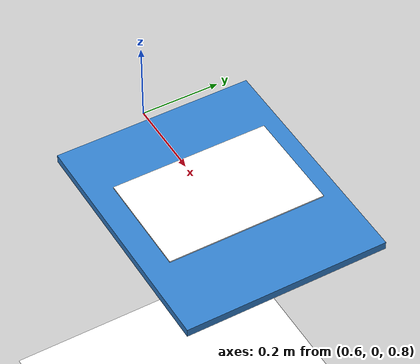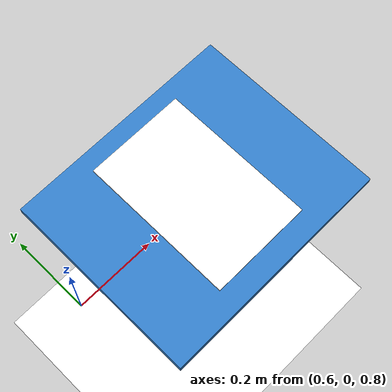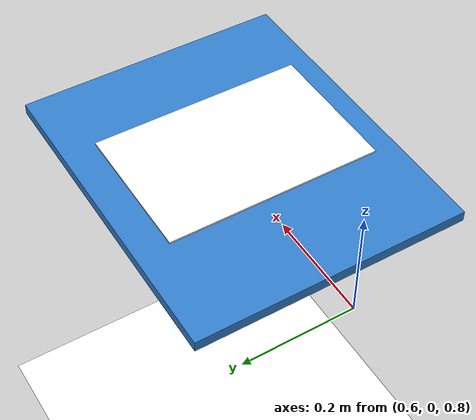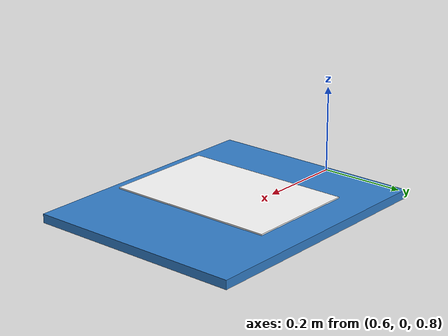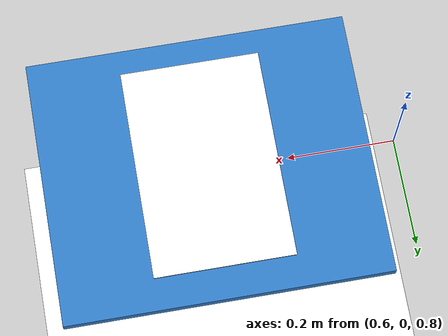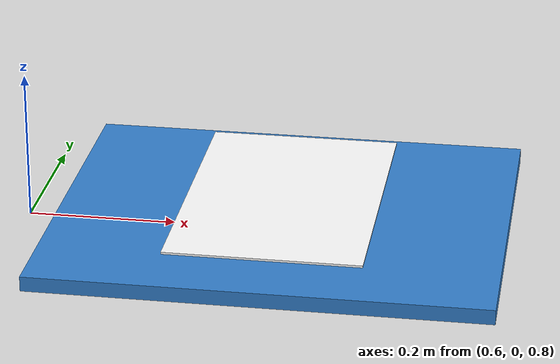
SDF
<?xml version="1.0" ?>

<sdf version="1.6">
  <world name="default">

    <!-- Plugin for simulating physics -->
    <plugin
      filename="gz-sim-physics-system"
      name="gz::sim::systems::Physics">
      <engine>
        <filename>libgz-physics-dartsim-plugin.so</filename>
      </engine>
    </plugin>

    <!-- Plugin for handling user commands -->
    <plugin
      filename="gz-sim-user-commands-system"
      name="gz::sim::systems::UserCommands">
    </plugin>

    <!-- Plugin for broadcasting scene updates -->
    <plugin
      filename="gz-sim-scene-broadcaster-system"
      name="gz::sim::systems::SceneBroadcaster">
    </plugin>

    <!-- Plugin for handling sensors like the LIDAR -->
    <!-- Ogre2 uses the NVIDIA GPU exposed through the NVIDIA Container Toolkit. -->
    <plugin
      filename="gz-sim-sensors-system"
      name="gz::sim::systems::Sensors">
      <render_engine>ogre2</render_engine>
    </plugin>

    <!-- To add realistic gravity, do: 0.0 0.0 -9.8, otherwise do 0.0 0.0 0.0 -->
    <gravity>0.0 0.0 -9.8</gravity>

    <!-- Local directional light (replaces the remote Fuel Sun model to avoid network fetches) -->
    <light type="directional" name="sun">
      <cast_shadows>true</cast_shadows>
      <pose>0 0 10 0 0 0</pose>
      <diffuse>0.8 0.8 0.8 1</diffuse>
      <specular>0.2 0.2 0.2 1</specular>
      <attenuation>
        <range>1000</range>
        <constant>0.9</constant>
        <linear>0.01</linear>
        <quadratic>0.001</quadratic>
      </attenuation>
      <direction>-0.5 0.1 -0.9</direction>
    </light>

    <include>
      <uri>model://textured_ground</uri>
      <name>ground_plane</name>
    </include>

    <!-- Define scene properties -->
    <scene>
      <shadows>false</shadows>
    </scene>

    <!-- Dynamic box (0.5 x 0.5 x 0.05 m), gravity applies -->
    <model name="box">
      <pose>0.95 0 0.82 0 0 0</pose>
      <link name="link">
        <inertial>
          <mass>1.0</mass>
          <!-- inertia of a solid box 0.6 x 0.5 x 0.02 m: I = m/12*(a²+b²) -->
          <inertia>
            <ixx>0.02104</ixx>
            <ixy>0</ixy>
            <ixz>0</ixz>
            <iyy>0.02104</iyy>
            <iyz>0</iyz>
            <izz>0.04167</izz>
          </inertia>
        </inertial>
        <collision name="collision">
          <geometry>
            <box>
              <size>0.6 0.5 0.02</size>
            </box>
          </geometry>
        </collision>
        <visual name="visual">
          <geometry>
            <box>
              <size>0.6 0.5 0.02</size>
            </box>
          </geometry>
          <material>
            <ambient>0.2 0.5 0.8 1</ambient>
            <diffuse>0.2 0.5 0.8 1</diffuse>
          </material>
        </visual>
      </link>
    </model>

    <!-- Calibration board placed at x=2, y=0, z=0 -->
    <include>
      <uri>model://calibration_board</uri>
      <name>calibration_board</name>
      <pose>0.95 0 0.85 0 0 0</pose>
    </include>

  </world>
</sdf>

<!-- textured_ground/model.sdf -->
<sdf version="1.6">
  <model name="ground_plane">
    <static>true</static>
    <link name="link">
      <collision name="collision">
        <geometry>
          <plane>
            <normal>0 0 1</normal>
          </plane>
        </geometry>
        <surface>
          <friction>
            <torsional>
              <coefficient>0.0</coefficient>
            </torsional>
          </friction>
        </surface>
      </collision>
      <visual name="visual">
        <geometry>
          <mesh>
            <uri>model://textured_ground/meshes/ground.obj</uri>
          </mesh>
        </geometry>
        <material>
          <diffuse>1.0 1.0 1.0 1.0</diffuse>
          <specular>0.2 0.2 0.2 1.0</specular>
          <pbr>
            <metal>
              <albedo_map>model://textured_ground/materials/textures/crop.png</albedo_map>
            </metal>
          </pbr>
        </material>
      </visual>
    </link>
  </model>
</sdf>

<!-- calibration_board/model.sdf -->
<sdf version="1.6">
  <model name="calibration_board">

    <!-- ─── Static (non-moving) board ─────────────────────────────────── -->
    <static>true</static>

    <link name="board_link">

      <!-- ── Inertia (required even for static models in some Gazebo versions) -->
      <inertial>
        <mass>0.180</mass>
        <!-- Thin flat plate: I = m*(w²+h²)/12 -->
        <inertia>
          <ixx>0.00230</ixx>   <!-- m*(H²+T²)/12 -->
          <iyy>0.00099</iyy>   <!-- m*(W²+T²)/12 -->
          <izz>0.00326</izz>   <!-- m*(W²+H²)/12 -->
          <ixy>0</ixy>
          <ixz>0</ixz>
          <iyz>0</iyz>
        </inertia>
      </inertial>

      <!-- ── Visual: textured flat box ───────────────────────────────── -->
      <visual name="board_visual">
        <geometry>
          <box>
            <!-- X = width 258 mm, Y = height 392 mm, Z = thickness 3 mm -->
            <size>0.258 0.392 0.003</size>
          </box>
        </geometry>
        <material>
          <ambient>1 1 1 1</ambient>
          <diffuse>1 1 1 1</diffuse>
          <specular>0.1 0.1 0.1 1</specular>
          <pbr>
            <metal>
              <albedo_map>model://calibration_board/calibration_board_texture.png</albedo_map>
              <metalness>0.0</metalness>
              <roughness>0.9</roughness>
            </metal>
          </pbr>
        </material>
      </visual>

      <!-- ── Collision: same box ──────────────────────────────────────── -->
      <collision name="board_collision">
        <geometry>
          <box>
            <size>0.258 0.392 0.003</size>
          </box>
        </geometry>
        <surface>
          <contact>
            <ode>
              <kp>1e6</kp>
              <kd>100</kd>
            </ode>
          </contact>
          <friction>
            <ode>
              <mu>0.8</mu>
              <mu2>0.8</mu2>
            </ode>
          </friction>
        </surface>
      </collision>

    </link>
  </model>
</sdf>
